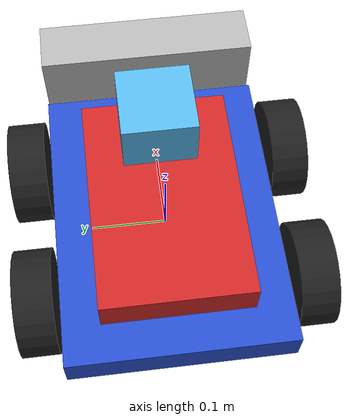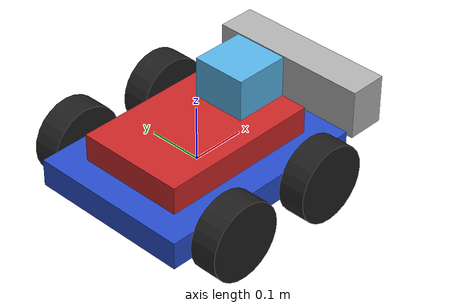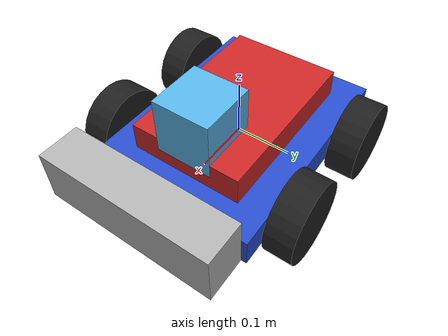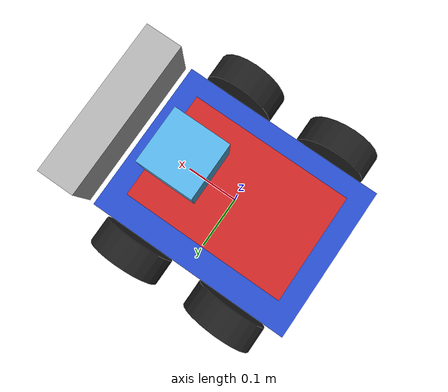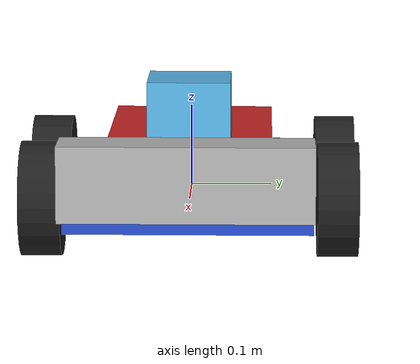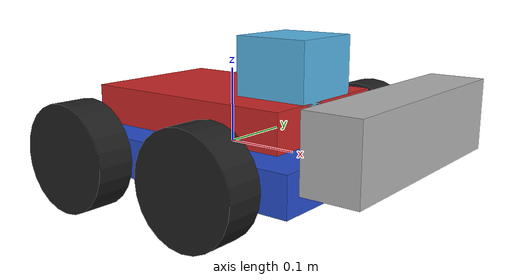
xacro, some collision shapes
<?xml version='1.0'?>

<robot name="my_robot" xmlns:xacro="http://www.ros.org/wiki/xacro">

  <!-- variables-->
  <xacro:property name="length_wheel" value="0.05"/>
  <xacro:property name="radius_wheel" value="0.07"/>
  <xacro:property name="base_heigth" value="0.05"/>
  <xacro:property name="base_width" value="0.3"/>
  <xacro:property name="base_length" value="0.4"/>
  <xacro:property name="wheel_body_space" value="0.18"/>

  <xacro:property name="top_heigth" value="0.05"/>
  <xacro:property name="top_width" value="0.2"/>
  <xacro:property name="top_length" value="0.3"/>

  <link name="robot_footprint"></link>

  <xacro:include filename="$(find my_robot)/urdf/my_robot.gazebo" />

  <joint name="robot_footprint_joint" type="fixed">
    <origin xyz="0 0 0" rpy="0 0 0" />
    <parent link="robot_footprint"/>
    <child link="chassis" />
  </joint>

  <link name='chassis'>
    <pose>0 0 0.1 0 0 0</pose>

    <inertial>
      <mass value="15.0"/>
      <origin xyz="0.0 0 0" rpy=" 0 0 0"/>
      <inertia
          ixx="0.1" ixy="0" ixz="0"
          iyy="0.1" iyz="0"
          izz="0.1"
      />
    </inertial>

    <collision name='collision'>
      <origin xyz="0 0 0" rpy=" 0 0 0"/>
      <geometry>
        <box size="${base_length} ${base_width} ${base_heigth}"/>
      </geometry>
    </collision>

    <visual name='chassis_visual'>
      <origin xyz="0 0 0" rpy=" 0 0 0"/>
      <geometry>
        <box size="${base_length} ${base_width} ${base_heigth}"/>
      </geometry>
    </visual>

  </link>

   <link name='chassis_top'>

    <inertial>
      <mass value="5.0"/>
      <origin xyz="0.0 0 0" rpy=" 0 0 0"/>
      <inertia
          ixx="0.1" ixy="0" ixz="0"
          iyy="0.1" iyz="0"
          izz="0.1"
      />
    </inertial>

    <collision name='chassis_top_collision'>
      <origin xyz="0 0 0" rpy=" 0 0 0"/>
      <geometry>
        <box size="${top_length} ${top_width} ${top_heigth}"/>
      </geometry>
    </collision>

    <visual name='chassis_top_visual'>
      <origin xyz="0 0 0" rpy=" 0 0 0"/>
      <geometry>
        <box size="${top_length} ${top_width} ${top_heigth}"/>
      </geometry>
    </visual>

  </link>

  <joint type="fixed" name="chassis_top_joint">
		<origin xyz="0 0 0.05" rpy="0 0 0"/>
		<child link="chassis_top"/>
		<parent link="chassis"/>
		<axis xyz="0 1 0" rpy="0 0 0"/>
  </joint>

  <link name="left_rear_wheel">

  	<inertial>
      <mass value="5.0"/>
      <origin xyz="0.0 0 0" rpy=" 0 0 0"/>
      <inertia
          ixx="0.1" ixy="0" ixz="0"
          iyy="0.1" iyz="0"
          izz="0.1"
      />
    </inertial>

  	<collision name='left_rear_wheel_collision'>
  		<origin xyz="0 0 0" rpy=" 0 1.5707 1.5707"/>
		<geometry>
			<cylinder length="${length_wheel}" radius="${radius_wheel}"/>
		</geometry>
  	</collision>

  	<visual name='left_rear_wheel_visual'>
      <origin xyz="0 0 0" rpy=" 0 1.5707 1.5707"/>
      <geometry>
        <cylinder length="${length_wheel}" radius="${radius_wheel}"/>
      </geometry>
    </visual>

  </link>

	<joint type="continuous" name="left_rear_wheel_hinge">
		<origin xyz="-${base_length/4} ${wheel_body_space} 0" rpy="0 0 0"/>
		<child link="left_rear_wheel"/>
		<parent link="chassis"/>
		<axis xyz="0 1 0" rpy="0 0 0"/>
		<limit effort="10000" velocity="1000"/>
		<dynamics damping="1.0" friction="1.0"/>
	</joint>

	<link name="left_front_wheel">

  	<inertial>
      <mass value="5.0"/>
      <origin xyz="0.0 0 0" rpy=" 0 0 0"/>
      <inertia
          ixx="0.1" ixy="0" ixz="0"
          iyy="0.1" iyz="0"
          izz="0.1"
      />
    </inertial>

  	<collision name='left_front_wheel_collision'>
  		<origin xyz="0 0 0" rpy=" 0 1.5707 1.5707"/>
		<geometry>
			<cylinder length="${length_wheel}" radius="${radius_wheel}"/>
		</geometry>
  	</collision>

  	<visual name='left_front_wheel_visual'>
      <origin xyz="0 0 0" rpy=" 0 1.5707 1.5707"/>
      <geometry>
        <cylinder length="${length_wheel}" radius="${radius_wheel}"/>
      </geometry>
    </visual>

  </link>

	<joint type="continuous" name="left_front_wheel_hinge">
		<origin xyz="${base_length/4} ${wheel_body_space} 0" rpy="0 0 0"/>
		<child link="left_front_wheel"/>
		<parent link="chassis"/>
		<axis xyz="0 1 0" rpy="0 0 0"/>
		<limit effort="10000" velocity="1000"/>
		<dynamics damping="1.0" friction="1.0"/>
	</joint>

	<link name="right_rear_wheel">

	  	<inertial>
		  <mass value="5.0"/>
		  <origin xyz="0.0 0 0" rpy=" 0 0 0"/>
		  <inertia
		      ixx="0.1" ixy="0" ixz="0"
		      iyy="0.1" iyz="0"
		      izz="0.1"
		  />
		</inertial>

	  	<collision name='right_rear_wheel_collision'>
	  		<origin xyz="0 0 0" rpy=" 0 1.5707 1.5707"/>
			<geometry>
				<cylinder length="${length_wheel}" radius="${radius_wheel}"/>
			</geometry>
	  	</collision>

	  	<visual name='right_rear_wheel_visual'>
		  <origin xyz="0 0 0" rpy=" 0 1.5707 1.5707"/>
		  <geometry>
		    <cylinder length="${length_wheel}" radius="${radius_wheel}"/>
		  </geometry>
		</visual>

	</link>

	<joint type="continuous" name="right_rear_wheel_hinge">
		<origin xyz="-${base_length/4} -${wheel_body_space} 0" rpy="0 0 0"/>
		<child link="right_rear_wheel"/>
		<parent link="chassis"/>
		<axis xyz="0 1 0" rpy="0 0 0"/>
		<limit effort="10000" velocity="1000"/>
		<dynamics damping="1.0" friction="1.0"/>
	</joint>

	<link name="right_front_wheel">

	  	<inertial>
		  <mass value="5.0"/>
		  <origin xyz="0.0 0 0" rpy=" 0 0 0"/>
		  <inertia
		      ixx="0.1" ixy="0" ixz="0"
		      iyy="0.1" iyz="0"
		      izz="0.1"
		  />
		</inertial>

	  	<collision name='right_front_wheel_collision'>
	  		<origin xyz="0 0 0" rpy=" 0 1.5707 1.5707"/>
			<geometry>
				<cylinder length="${length_wheel}" radius="${radius_wheel}"/>
			</geometry>
	  	</collision>

	  	<visual name='right_front_wheel_visual'>
		  <origin xyz="0 0 0" rpy=" 0 1.5707 1.5707"/>
		  <geometry>
		    <cylinder length="${length_wheel}" radius="${radius_wheel}"/>
		  </geometry>
		</visual>

	</link>

	<joint type="continuous" name="right_front_wheel_hinge">
		<origin xyz="${base_length/4} -${wheel_body_space} 0" rpy="0 0 0"/>
		<child link="right_front_wheel"/>
		<parent link="chassis"/>
		<axis xyz="0 1 0" rpy="0 0 0"/>
		<limit effort="10000" velocity="1000"/>
		<dynamics damping="1.0" friction="1.0"/>
	</joint>

	<link name="camera">

	  	<inertial>
		  <mass value="0.1"/>
		  <origin xyz="0.05 0.05 0.05" rpy=" 0 0 0"/>
		  <inertia
		      ixx="1e-6" ixy="0" ixz="0"
		      iyy="1e-6" iyz="0"
		      izz="1e-6"
		  />
		</inertial>

	  	<collision name='camera_collision'>
	  		<origin xyz="0 0 0" rpy=" 0 0 0"/>
			<geometry>
				<box size="0.07 0.3 0.09"/>
			</geometry>
	  	</collision>

	  	<visual name='camera_visual'>
		  <origin xyz="0 0 0" rpy=" 0 0 0"/>
		  <geometry>
		    <mesh filename="package://my_robot/meshes/kinect.dae"/>
		  </geometry>
		</visual>

	</link>

	<joint name="camera_optical_joint" type="fixed">
            <origin xyz="0 0 0" rpy="-1.5707 0 -1.5707"/>
            <parent link="camera"/>
            <child link="camera_link_optical"/>
        </joint>
        <link name="camera_link_optical"/>

	<joint type="fixed" name="camera-joint">
		<origin xyz="0.25 0 0.05" rpy="0 0 0"/>
		<child link="camera"/>
		<parent link="chassis"/>
		<axis xyz="0 1 0" rpy="0 0 0"/>
	</joint>

	<link name="hokuyo">

	  	<inertial>
		  <mass value="1e-5"/>
		  <origin xyz="0 0 0" rpy=" 0 0 0"/>
		  <inertia
		      ixx="1e-6" ixy="0" ixz="0"
		      iyy="1e-6" iyz="0"
		      izz="1e-6"
		  />
		</inertial>

	  	<collision name='hokuyo_collision'>
	  		<origin xyz="0 0 0" rpy=" 0 0 0"/>
			<geometry>
				<box size="0.1 0.1 0.1"/>
			</geometry>
	  	</collision>

	  	<visual name='hokuyo_visual'>
		  <origin xyz="0 0 0" rpy=" 0 0 0"/>
		  <geometry>
		    <mesh filename="package://my_robot/meshes/hokuyo.dae"/>
		  </geometry>
		</visual>

	</link>

	<joint type="fixed" name="hokuyo-joint">
		<origin xyz="0.1 0 0.05" rpy="0 0 0"/>
		<child link="hokuyo"/>
		<parent link="chassis_top"/>
		<axis xyz="0 1 0" rpy="0 0 0"/>
	</joint>

	<gazebo reference="left_rear_wheel">
		<material>Gazebo/Black</material>
	</gazebo>

	<gazebo reference="right_rear_wheel">
		<material>Gazebo/Black</material>
	</gazebo>

	<gazebo reference="left_front_wheel">
		<material>Gazebo/Black</material>
	</gazebo>

	<gazebo reference="right_front_wheel">
		<material>Gazebo/Black</material>
	</gazebo>

	<gazebo reference="chassis">
		<material>Gazebo/Blue</material>
	</gazebo>

	<gazebo reference="chassis_top">
		<material>Gazebo/Red</material>
	</gazebo>

</robot>
